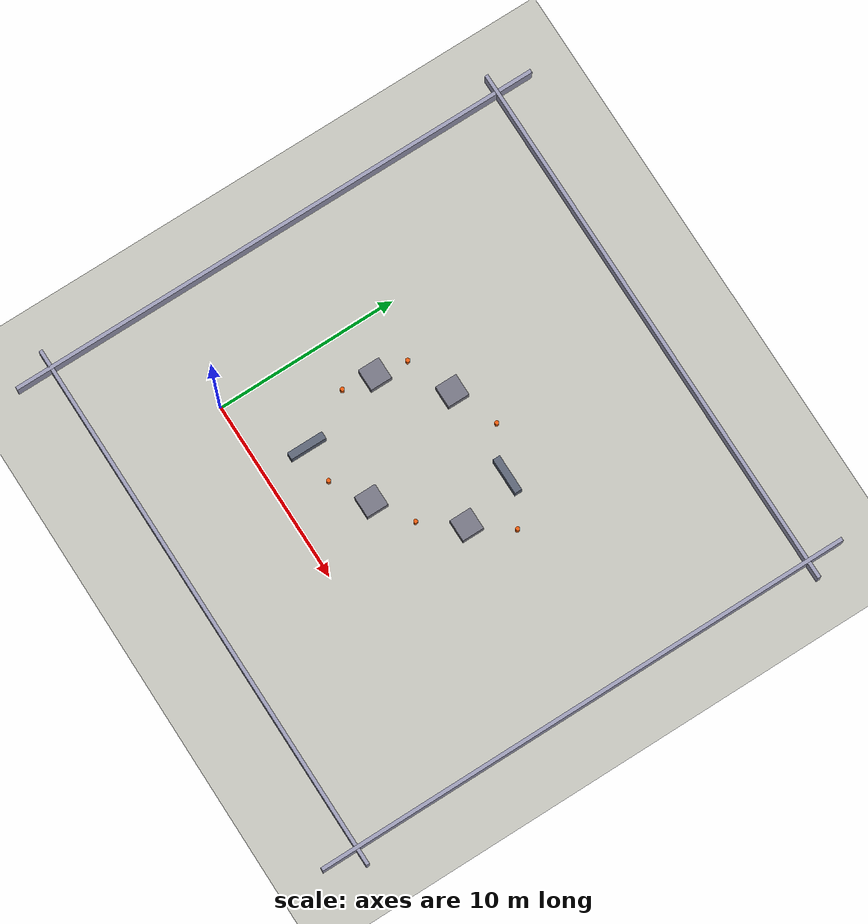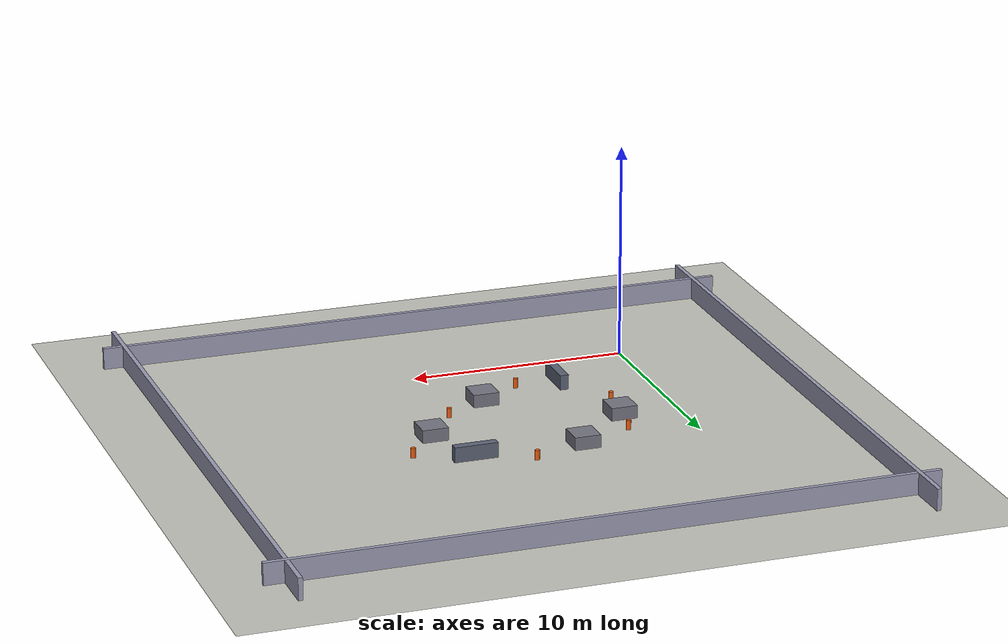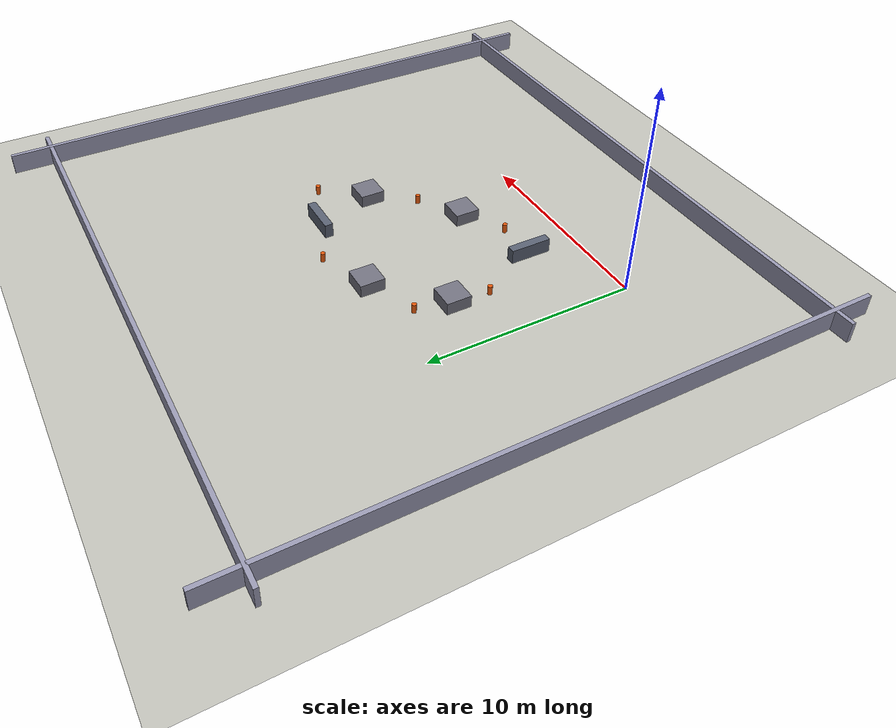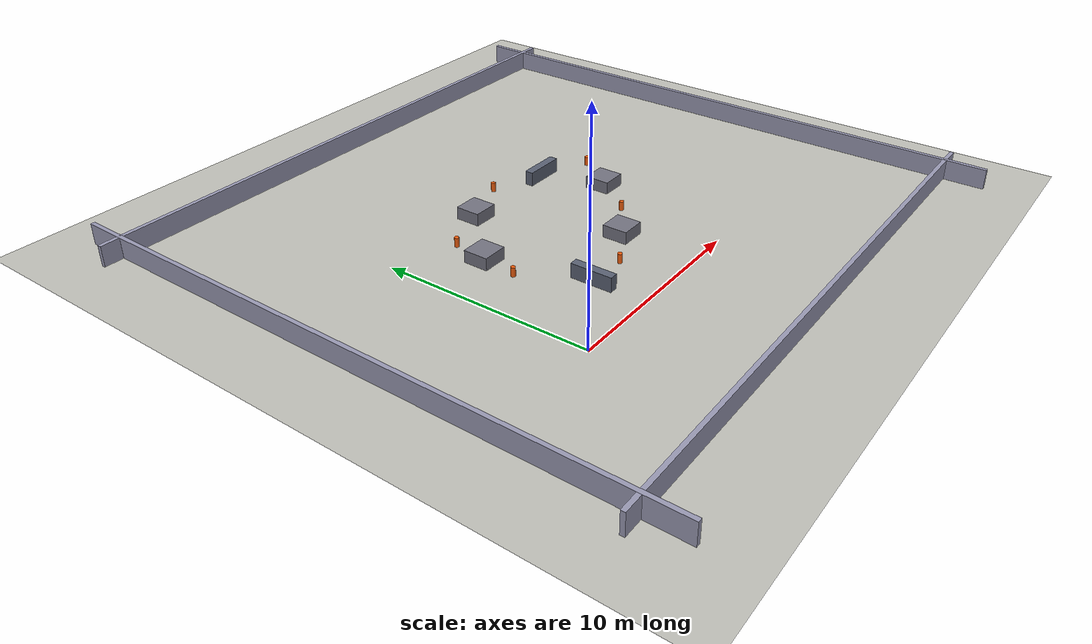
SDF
<?xml version="1.0"?>
<sdf version="1.9">
  <world name="trekking">

    <physics name="1ms" type="ignored">
      <max_step_size>0.001</max_step_size>
      <real_time_factor>1.0</real_time_factor>
    </physics>

    <plugin filename="gz-sim-physics-system"
            name="gz::sim::systems::Physics"/>
    <plugin filename="gz-sim-user-commands-system"
            name="gz::sim::systems::UserCommands"/>
    <plugin filename="gz-sim-scene-broadcaster-system"
            name="gz::sim::systems::SceneBroadcaster"/>
    <plugin filename="gz-sim-imu-system"
            name="gz::sim::systems::Imu"></plugin>
    <plugin filename="gz-sim-sensors-system"
            name="gz::sim::systems::Sensors">
      <render_engine>ogre2</render_engine>
    </plugin>

    <light type="directional" name="sun">
      <cast_shadows>true</cast_shadows>
      <pose>0 0 10 0 0 0</pose>
      <diffuse>0.8 0.8 0.8 1</diffuse>
      <specular>0.2 0.2 0.2 1</specular>
      <direction>-0.5 0.1 -0.9</direction>
    </light>

    <model name="ground_plane">
      <static>true</static>
      <link name="link">
        <collision name="collision">
          <geometry><plane><normal>0 0 1</normal><size>100 100</size></plane></geometry>
        </collision>
        <visual name="visual">
          <geometry><plane><normal>0 0 1</normal><size>100 100</size></plane></geometry>
          <material>
            <ambient>0.75 0.75 0.72 1</ambient>
            <diffuse>0.75 0.75 0.72 1</diffuse>
          </material>
        </visual>
      </link>
    </model>

    <!-- ==================== CONES = AS ESTAÇÕES DA PISTA ==================== -->
    <!-- C1 (6.0, 2.5)  reto a 4 m do start, com a barreira B1 no meio -->
    <model name="cone_1">
      <static>true</static><pose>6.0 2.5 0.225 0 0 0</pose>
      <link name="link">
        <collision name="col"><geometry><cylinder><radius>0.11</radius><length>0.45</length></cylinder></geometry></collision>
        <visual name="vis"><geometry><cylinder><radius>0.11</radius><length>0.45</length></cylinder></geometry>
          <material><ambient>0.9 0.35 0.05 1</ambient><diffuse>0.9 0.35 0.05 1</diffuse></material></visual>
      </link>
    </model>
    <model name="cone_2">
      <static>true</static><pose>10.0 5.0 0.225 0 0 0</pose>
      <link name="link">
        <collision name="col"><geometry><cylinder><radius>0.11</radius><length>0.45</length></cylinder></geometry></collision>
        <visual name="vis"><geometry><cylinder><radius>0.11</radius><length>0.45</length></cylinder></geometry>
          <material><ambient>0.9 0.35 0.05 1</ambient><diffuse>0.9 0.35 0.05 1</diffuse></material></visual>
      </link>
    </model>
    <model name="cone_3">
      <static>true</static><pose>13.0 9.0 0.225 0 0 0</pose>
      <link name="link">
        <collision name="col"><geometry><cylinder><radius>0.11</radius><length>0.45</length></cylinder></geometry></collision>
        <visual name="vis"><geometry><cylinder><radius>0.11</radius><length>0.45</length></cylinder></geometry>
          <material><ambient>0.9 0.35 0.05 1</ambient><diffuse>0.9 0.35 0.05 1</diffuse></material></visual>
      </link>
    </model>
    <model name="cone_4">
      <static>true</static><pose>8.0 11.0 0.225 0 0 0</pose>
      <link name="link">
        <collision name="col"><geometry><cylinder><radius>0.11</radius><length>0.45</length></cylinder></geometry></collision>
        <visual name="vis"><geometry><cylinder><radius>0.11</radius><length>0.45</length></cylinder></geometry>
          <material><ambient>0.9 0.35 0.05 1</ambient><diffuse>0.9 0.35 0.05 1</diffuse></material></visual>
      </link>
    </model>
    <model name="cone_5">
      <static>true</static><pose>3.0 9.0 0.225 0 0 0</pose>
      <link name="link">
        <collision name="col"><geometry><cylinder><radius>0.11</radius><length>0.45</length></cylinder></geometry></collision>
        <visual name="vis"><geometry><cylinder><radius>0.11</radius><length>0.45</length></cylinder></geometry>
          <material><ambient>0.9 0.35 0.05 1</ambient><diffuse>0.9 0.35 0.05 1</diffuse></material></visual>
      </link>
    </model>
    <!-- C6 (2.5, 5.5)  volta pra perto do start -->
    <model name="cone_6">
      <static>true</static><pose>2.5 5.5 0.225 0 0 0</pose>
      <link name="link">
        <collision name="col"><geometry><cylinder><radius>0.11</radius><length>0.45</length></cylinder></geometry></collision>
        <visual name="vis"><geometry><cylinder><radius>0.11</radius><length>0.45</length></cylinder></geometry>
          <material><ambient>0.9 0.35 0.05 1</ambient><diffuse>0.9 0.35 0.05 1</diffuse></material></visual>
      </link>
    </model>

    <!-- ============ OBSTÁCULOS: um EM CIMA de cada perna da rota ============ -->
    <!-- B1 (4.0, 2.5) barreira 2 m atravessada entre o start e C1 -->
    <model name="obst_1">
      <static>true</static><pose>4.0 2.5 0.35 0 0 0</pose>
      <link name="link">
        <collision name="col"><geometry><box><size>0.4 2.0 0.7</size></box></geometry></collision>
        <visual name="vis"><geometry><box><size>0.4 2.0 0.7</size></box></geometry>
          <material><diffuse>0.35 0.38 0.45 1</diffuse></material></visual>
      </link>
    </model>
    <!-- B2 (8.0, 3.7) no meio de C1 p/ C2 -->
    <model name="obst_2">
      <static>true</static><pose>8.0 3.7 0.3 0 0 0</pose>
      <link name="link">
        <collision name="col"><geometry><box><size>1.2 1.2 0.6</size></box></geometry></collision>
        <visual name="vis"><geometry><box><size>1.2 1.2 0.6</size></box></geometry>
          <material><diffuse>0.45 0.45 0.5 1</diffuse></material></visual>
      </link>
    </model>
    <!-- B3 (11.5, 7.0) no meio de C2 p/ C3 -->
    <model name="obst_3">
      <static>true</static><pose>11.5 7.0 0.3 0 0 0</pose>
      <link name="link">
        <collision name="col"><geometry><box><size>1.2 1.2 0.6</size></box></geometry></collision>
        <visual name="vis"><geometry><box><size>1.2 1.2 0.6</size></box></geometry>
          <material><diffuse>0.45 0.45 0.5 1</diffuse></material></visual>
      </link>
    </model>
    <!-- B4 (10.5, 10.0) no meio de C3 p/ C4 -->
    <model name="obst_4">
      <static>true</static><pose>10.5 10.0 0.35 0 0 0</pose>
      <link name="link">
        <collision name="col"><geometry><box><size>2.0 0.4 0.7</size></box></geometry></collision>
        <visual name="vis"><geometry><box><size>2.0 0.4 0.7</size></box></geometry>
          <material><diffuse>0.35 0.38 0.45 1</diffuse></material></visual>
      </link>
    </model>
    <!-- B5 (5.5, 10.0) no meio de C4 p/ C5 -->
    <model name="obst_5">
      <static>true</static><pose>5.5 10.0 0.3 0 0 0</pose>
      <link name="link">
        <collision name="col"><geometry><box><size>1.2 1.2 0.6</size></box></geometry></collision>
        <visual name="vis"><geometry><box><size>1.2 1.2 0.6</size></box></geometry>
          <material><diffuse>0.45 0.45 0.5 1</diffuse></material></visual>
      </link>
    </model>
    <!-- B6 (2.75, 7.25) no meio de C5 p/ C6 -->
    <model name="obst_6">
      <static>true</static><pose>2.75 7.25 0.3 0 0 0</pose>
      <link name="link">
        <collision name="col"><geometry><box><size>1.2 1.2 0.6</size></box></geometry></collision>
        <visual name="vis"><geometry><box><size>1.2 1.2 0.6</size></box></geometry>
          <material><diffuse>0.45 0.45 0.5 1</diffuse></material></visual>
      </link>
    </model>

    <!-- ============ PAREDES: longe, fora do alcance do detector ============ -->
    <model name="wall_west">
      <static>true</static><pose>-6 7 0.5 0 0 0</pose>
      <link name="link">
        <collision name="col"><geometry><box><size>0.2 30 1</size></box></geometry></collision>
        <visual name="vis"><geometry><box><size>0.2 30 1</size></box></geometry>
          <material><diffuse>0.6 0.6 0.7 1</diffuse></material></visual>
      </link>
    </model>
    <model name="wall_east">
      <static>true</static><pose>22 7 0.5 0 0 0</pose>
      <link name="link">
        <collision name="col"><geometry><box><size>0.2 30 1</size></box></geometry></collision>
        <visual name="vis"><geometry><box><size>0.2 30 1</size></box></geometry>
          <material><diffuse>0.6 0.6 0.7 1</diffuse></material></visual>
      </link>
    </model>
    <model name="wall_south">
      <static>true</static><pose>8 -6 0.5 0 0 0</pose>
      <link name="link">
        <collision name="col"><geometry><box><size>30 0.2 1</size></box></geometry></collision>
        <visual name="vis"><geometry><box><size>30 0.2 1</size></box></geometry>
          <material><diffuse>0.6 0.6 0.7 1</diffuse></material></visual>
      </link>
    </model>
    <model name="wall_north">
      <static>true</static><pose>8 20 0.5 0 0 0</pose>
      <link name="link">
        <collision name="col"><geometry><box><size>30 0.2 1</size></box></geometry></collision>
        <visual name="vis"><geometry><box><size>30 0.2 1</size></box></geometry>
          <material><diffuse>0.6 0.6 0.7 1</diffuse></material></visual>
      </link>
    </model>

  </world>
</sdf>
